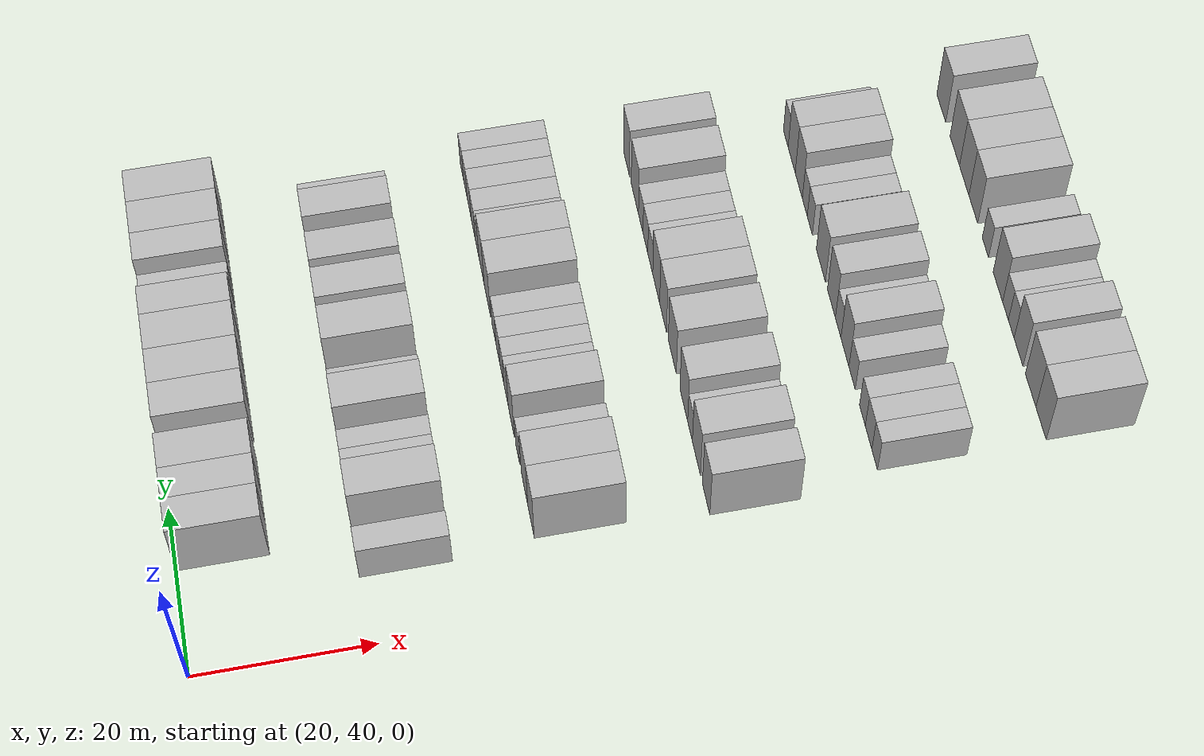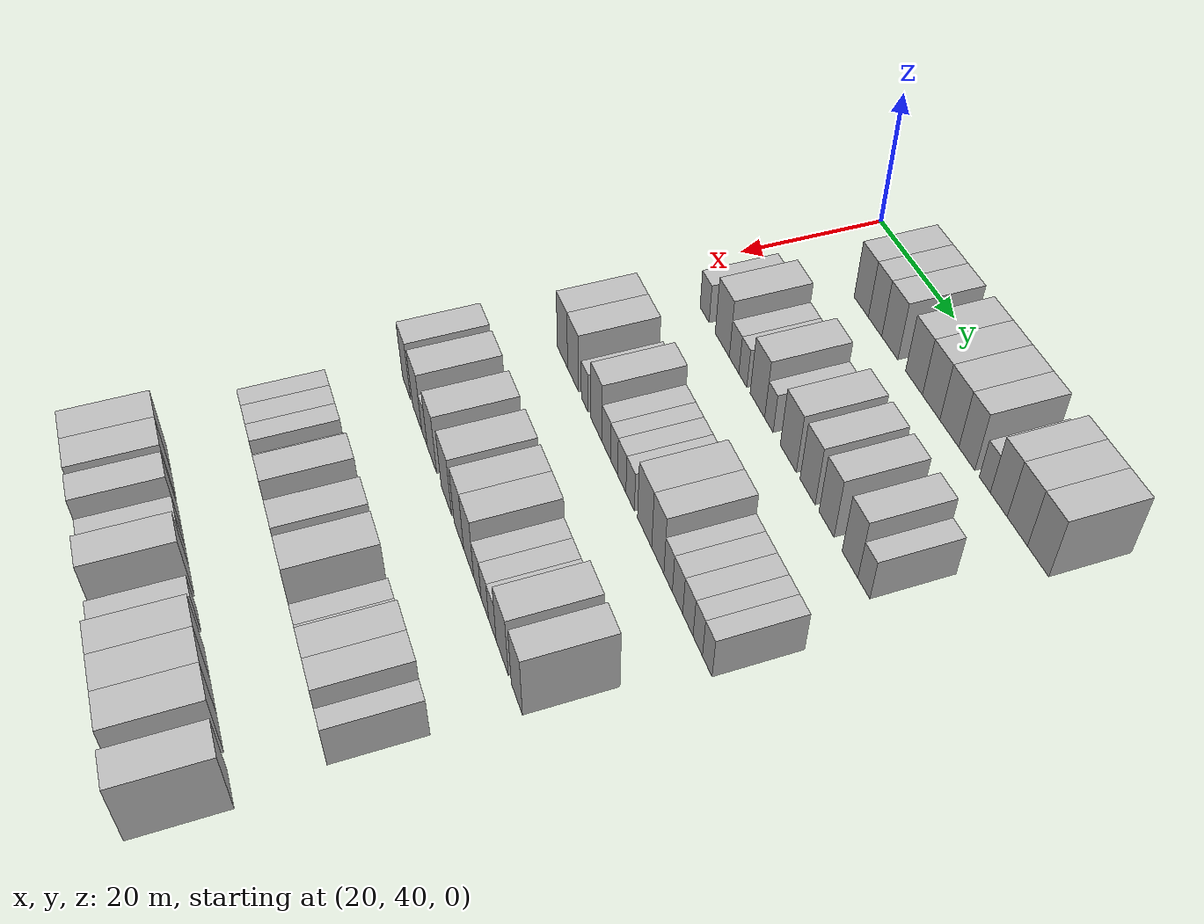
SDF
<sdf version="1.6">
 <world name="default">
  <model name="building_94">
   <static>1</static>
   <pose>25.0000 54.4651 0 0.000000 0.000000 0.000000</pose>
   <link name="link">
    <pose>0 0 4.50 0 0 0</pose>
    <collision name="collision"><geometry><box><size>10.0000 3.9779 9.0000</size></box></geometry></collision>
    <visual name="visual">
     <cast_shadows>0</cast_shadows>
     <geometry><box><size>10.0000 3.9779 9.0000</size></box></geometry>
     <material>
      <script>
       <uri>model://HANNAS_wall/materials/scripts</uri>
       <uri>model://HANNAS_wall/materials/textures</uri>
       <name>vrc/HANNAS_wall</name>
      </script>
     </material>
    </visual>
   </link>
  </model>
  <model name="building_95">
   <static>1</static>
   <pose>25.0000 58.2838 0 0.000000 0.000000 0.000000</pose>
   <link name="link">
    <pose>0 0 4.50 0 0 0</pose>
    <collision name="collision"><geometry><box><size>10.0000 3.6594 9.0000</size></box></geometry></collision>
    <visual name="visual">
     <cast_shadows>0</cast_shadows>
     <geometry><box><size>10.0000 3.6594 9.0000</size></box></geometry>
     <material>
      <script>
       <uri>model://HANNAS_wall/materials/scripts</uri>
       <uri>model://HANNAS_wall/materials/textures</uri>
       <name>vrc/HANNAS_wall</name>
      </script>
     </material>
    </visual>
   </link>
  </model>
  <model name="building_96">
   <static>1</static>
   <pose>25.0000 62.2503 0 0.000000 0.000000 0.000000</pose>
   <link name="link">
    <pose>0 0 4.50 0 0 0</pose>
    <collision name="collision"><geometry><box><size>10.0000 4.2736 9.0000</size></box></geometry></collision>
    <visual name="visual">
     <cast_shadows>0</cast_shadows>
     <geometry><box><size>10.0000 4.2736 9.0000</size></box></geometry>
     <material>
      <script>
       <uri>model://HANNAS_wall/materials/scripts</uri>
       <uri>model://HANNAS_wall/materials/textures</uri>
       <name>vrc/HANNAS_wall</name>
      </script>
     </material>
    </visual>
   </link>
  </model>
  <model name="building_97">
   <static>1</static>
   <pose>25.0000 68.5186 0 0.000000 0.000000 0.000000</pose>
   <link name="link">
    <pose>0 0 4.50 0 0 0</pose>
    <collision name="collision"><geometry><box><size>10.0000 4.2631 9.0000</size></box></geometry></collision>
    <visual name="visual">
     <cast_shadows>0</cast_shadows>
     <geometry><box><size>10.0000 4.2631 9.0000</size></box></geometry>
     <material>
      <script>
       <uri>model://HANNAS_wall/materials/scripts</uri>
       <uri>model://HANNAS_wall/materials/textures</uri>
       <name>vrc/HANNAS_wall</name>
      </script>
     </material>
    </visual>
   </link>
  </model>
  <model name="building_98">
   <static>1</static>
   <pose>25.0000 72.7867 0 0.000000 0.000000 0.000000</pose>
   <link name="link">
    <pose>0 0 4.50 0 0 0</pose>
    <collision name="collision"><geometry><box><size>10.0000 4.2731 9.0000</size></box></geometry></collision>
    <visual name="visual">
     <cast_shadows>0</cast_shadows>
     <geometry><box><size>10.0000 4.2731 9.0000</size></box></geometry>
     <material>
      <script>
       <uri>model://HANNAS_wall/materials/scripts</uri>
       <uri>model://HANNAS_wall/materials/textures</uri>
       <name>vrc/HANNAS_wall</name>
      </script>
     </material>
    </visual>
   </link>
  </model>
  <model name="building_99">
   <static>1</static>
   <pose>25.0000 77.1698 0 0.000000 0.000000 0.000000</pose>
   <link name="link">
    <pose>0 0 4.50 0 0 0</pose>
    <collision name="collision"><geometry><box><size>10.0000 4.4931 9.0000</size></box></geometry></collision>
    <visual name="visual">
     <cast_shadows>0</cast_shadows>
     <geometry><box><size>10.0000 4.4931 9.0000</size></box></geometry>
     <material>
      <script>
       <uri>model://HANNAS_wall/materials/scripts</uri>
       <uri>model://HANNAS_wall/materials/textures</uri>
       <name>vrc/HANNAS_wall</name>
      </script>
     </material>
    </visual>
   </link>
  </model>
  <model name="building_100">
   <static>1</static>
   <pose>25.0000 81.2491 0 0.000000 0.000000 0.000000</pose>
   <link name="link">
    <pose>0 0 4.50 0 0 0</pose>
    <collision name="collision"><geometry><box><size>10.0000 3.6656 9.0000</size></box></geometry></collision>
    <visual name="visual">
     <cast_shadows>0</cast_shadows>
     <geometry><box><size>10.0000 3.6656 9.0000</size></box></geometry>
     <material>
      <script>
       <uri>model://HANNAS_wall/materials/scripts</uri>
       <uri>model://HANNAS_wall/materials/textures</uri>
       <name>vrc/HANNAS_wall</name>
      </script>
     </material>
    </visual>
   </link>
  </model>
  <model name="building_101">
   <static>1</static>
   <pose>25.0000 85.3019 0 0.000000 0.000000 0.000000</pose>
   <link name="link">
    <pose>0 0 3.00 0 0 0</pose>
    <collision name="collision"><geometry><box><size>10.0000 2.4399 6.0000</size></box></geometry></collision>
    <visual name="visual">
     <cast_shadows>0</cast_shadows>
     <geometry><box><size>10.0000 2.4399 6.0000</size></box></geometry>
     <material>
      <script>
       <uri>model://HANNAS_wall/materials/scripts</uri>
       <uri>model://HANNAS_wall/materials/textures</uri>
       <name>vrc/HANNAS_wall</name>
      </script>
     </material>
    </visual>
   </link>
  </model>
  <model name="building_102">
   <static>1</static>
   <pose>25.0000 88.3572 0 0.000000 0.000000 0.000000</pose>
   <link name="link">
    <pose>0 0 4.50 0 0 0</pose>
    <collision name="collision"><geometry><box><size>10.0000 3.6708 9.0000</size></box></geometry></collision>
    <visual name="visual">
     <cast_shadows>0</cast_shadows>
     <geometry><box><size>10.0000 3.6708 9.0000</size></box></geometry>
     <material>
      <script>
       <uri>model://HANNAS_wall/materials/scripts</uri>
       <uri>model://HANNAS_wall/materials/textures</uri>
       <name>vrc/HANNAS_wall</name>
      </script>
     </material>
    </visual>
   </link>
  </model>
  <model name="building_103">
   <static>1</static>
   <pose>25.0000 92.3159 0 0.000000 0.000000 0.000000</pose>
   <link name="link">
    <pose>0 0 4.50 0 0 0</pose>
    <collision name="collision"><geometry><box><size>10.0000 4.2466 9.0000</size></box></geometry></collision>
    <visual name="visual">
     <cast_shadows>0</cast_shadows>
     <geometry><box><size>10.0000 4.2466 9.0000</size></box></geometry>
     <material>
      <script>
       <uri>model://HANNAS_wall/materials/scripts</uri>
       <uri>model://HANNAS_wall/materials/textures</uri>
       <name>vrc/HANNAS_wall</name>
      </script>
     </material>
    </visual>
   </link>
  </model>
  <model name="building_104">
   <static>1</static>
   <pose>25.0000 96.5889 0 0.000000 0.000000 0.000000</pose>
   <link name="link">
    <pose>0 0 4.50 0 0 0</pose>
    <collision name="collision"><geometry><box><size>10.0000 4.2994 9.0000</size></box></geometry></collision>
    <visual name="visual">
     <cast_shadows>0</cast_shadows>
     <geometry><box><size>10.0000 4.2994 9.0000</size></box></geometry>
     <material>
      <script>
       <uri>model://HANNAS_wall/materials/scripts</uri>
       <uri>model://HANNAS_wall/materials/textures</uri>
       <name>vrc/HANNAS_wall</name>
      </script>
     </material>
    </visual>
   </link>
  </model>
  <model name="building_266">
   <static>1</static>
   <pose>44.0000 49.5272 0 0.000000 0.000000 0.000000</pose>
   <link name="link">
    <pose>0 0 3.00 0 0 0</pose>
    <collision name="collision"><geometry><box><size>10.0000 2.9959 6.0000</size></box></geometry></collision>
    <visual name="visual">
     <cast_shadows>0</cast_shadows>
     <geometry><box><size>10.0000 2.9959 6.0000</size></box></geometry>
     <material>
      <script>
       <uri>model://HANNAS_wall/materials/scripts</uri>
       <uri>model://HANNAS_wall/materials/textures</uri>
       <name>vrc/HANNAS_wall</name>
      </script>
     </material>
    </visual>
   </link>
  </model>
  <model name="building_267">
   <static>1</static>
   <pose>44.0000 55.2605 0 0.000000 0.000000 0.000000</pose>
   <link name="link">
    <pose>0 0 4.50 0 0 0</pose>
    <collision name="collision"><geometry><box><size>10.0000 4.4707 9.0000</size></box></geometry></collision>
    <visual name="visual">
     <cast_shadows>0</cast_shadows>
     <geometry><box><size>10.0000 4.4707 9.0000</size></box></geometry>
     <material>
      <script>
       <uri>model://HANNAS_wall/materials/scripts</uri>
       <uri>model://HANNAS_wall/materials/textures</uri>
       <name>vrc/HANNAS_wall</name>
      </script>
     </material>
    </visual>
   </link>
  </model>
  <model name="building_268">
   <static>1</static>
   <pose>44.0000 58.9593 0 0.000000 0.000000 0.000000</pose>
   <link name="link">
    <pose>0 0 3.00 0 0 0</pose>
    <collision name="collision"><geometry><box><size>10.0000 2.9268 6.0000</size></box></geometry></collision>
    <visual name="visual">
     <cast_shadows>0</cast_shadows>
     <geometry><box><size>10.0000 2.9268 6.0000</size></box></geometry>
     <material>
      <script>
       <uri>model://HANNAS_wall/materials/scripts</uri>
       <uri>model://HANNAS_wall/materials/textures</uri>
       <name>vrc/HANNAS_wall</name>
      </script>
     </material>
    </visual>
   </link>
  </model>
  <model name="building_269">
   <static>1</static>
   <pose>44.0000 61.6419 0 0.000000 0.000000 0.000000</pose>
   <link name="link">
    <pose>0 0 3.00 0 0 0</pose>
    <collision name="collision"><geometry><box><size>10.0000 2.4384 6.0000</size></box></geometry></collision>
    <visual name="visual">
     <cast_shadows>0</cast_shadows>
     <geometry><box><size>10.0000 2.4384 6.0000</size></box></geometry>
     <material>
      <script>
       <uri>model://HANNAS_wall/materials/scripts</uri>
       <uri>model://HANNAS_wall/materials/textures</uri>
       <name>vrc/HANNAS_wall</name>
      </script>
     </material>
    </visual>
   </link>
  </model>
  <model name="building_270">
   <static>1</static>
   <pose>44.0000 65.9875 0 0.000000 0.000000 0.000000</pose>
   <link name="link">
    <pose>0 0 4.50 0 0 0</pose>
    <collision name="collision"><geometry><box><size>10.0000 4.2530 9.0000</size></box></geometry></collision>
    <visual name="visual">
     <cast_shadows>0</cast_shadows>
     <geometry><box><size>10.0000 4.2530 9.0000</size></box></geometry>
     <material>
      <script>
       <uri>model://HANNAS_wall/materials/scripts</uri>
       <uri>model://HANNAS_wall/materials/textures</uri>
       <name>vrc/HANNAS_wall</name>
      </script>
     </material>
    </visual>
   </link>
  </model>
  <model name="building_271">
   <static>1</static>
   <pose>44.0000 69.3295 0 0.000000 0.000000 0.000000</pose>
   <link name="link">
    <pose>0 0 3.00 0 0 0</pose>
    <collision name="collision"><geometry><box><size>10.0000 2.4308 6.0000</size></box></geometry></collision>
    <visual name="visual">
     <cast_shadows>0</cast_shadows>
     <geometry><box><size>10.0000 2.4308 6.0000</size></box></geometry>
     <material>
      <script>
       <uri>model://HANNAS_wall/materials/scripts</uri>
       <uri>model://HANNAS_wall/materials/textures</uri>
       <name>vrc/HANNAS_wall</name>
      </script>
     </material>
    </visual>
   </link>
  </model>
  <model name="building_272">
   <static>1</static>
   <pose>44.0000 74.7410 0 0.000000 0.000000 0.000000</pose>
   <link name="link">
    <pose>0 0 4.50 0 0 0</pose>
    <collision name="collision"><geometry><box><size>10.0000 4.3922 9.0000</size></box></geometry></collision>
    <visual name="visual">
     <cast_shadows>0</cast_shadows>
     <geometry><box><size>10.0000 4.3922 9.0000</size></box></geometry>
     <material>
      <script>
       <uri>model://HANNAS_wall/materials/scripts</uri>
       <uri>model://HANNAS_wall/materials/textures</uri>
       <name>vrc/HANNAS_wall</name>
      </script>
     </material>
    </visual>
   </link>
  </model>
  <model name="building_273">
   <static>1</static>
   <pose>44.0000 79.9260 0 0.000000 0.000000 0.000000</pose>
   <link name="link">
    <pose>0 0 4.50 0 0 0</pose>
    <collision name="collision"><geometry><box><size>10.0000 3.9779 9.0000</size></box></geometry></collision>
    <visual name="visual">
     <cast_shadows>0</cast_shadows>
     <geometry><box><size>10.0000 3.9779 9.0000</size></box></geometry>
     <material>
      <script>
       <uri>model://HANNAS_wall/materials/scripts</uri>
       <uri>model://HANNAS_wall/materials/textures</uri>
       <name>vrc/HANNAS_wall</name>
      </script>
     </material>
    </visual>
   </link>
  </model>
  <model name="building_274">
   <static>1</static>
   <pose>44.0000 84.8098 0 0.000000 0.000000 0.000000</pose>
   <link name="link">
    <pose>0 0 4.50 0 0 0</pose>
    <collision name="collision"><geometry><box><size>10.0000 3.7897 9.0000</size></box></geometry></collision>
    <visual name="visual">
     <cast_shadows>0</cast_shadows>
     <geometry><box><size>10.0000 3.7897 9.0000</size></box></geometry>
     <material>
      <script>
       <uri>model://HANNAS_wall/materials/scripts</uri>
       <uri>model://HANNAS_wall/materials/textures</uri>
       <name>vrc/HANNAS_wall</name>
      </script>
     </material>
    </visual>
   </link>
  </model>
  <model name="building_275">
   <static>1</static>
   <pose>44.0000 90.5915 0 0.000000 0.000000 0.000000</pose>
   <link name="link">
    <pose>0 0 4.50 0 0 0</pose>
    <collision name="collision"><geometry><box><size>10.0000 3.7737 9.0000</size></box></geometry></collision>
    <visual name="visual">
     <cast_shadows>0</cast_shadows>
     <geometry><box><size>10.0000 3.7737 9.0000</size></box></geometry>
     <material>
      <script>
       <uri>model://HANNAS_wall/materials/scripts</uri>
       <uri>model://HANNAS_wall/materials/textures</uri>
       <name>vrc/HANNAS_wall</name>
      </script>
     </material>
    </visual>
   </link>
  </model>
  <model name="building_276">
   <static>1</static>
   <pose>44.0000 93.8829 0 0.000000 0.000000 0.000000</pose>
   <link name="link">
    <pose>0 0 3.00 0 0 0</pose>
    <collision name="collision"><geometry><box><size>10.0000 2.8090 6.0000</size></box></geometry></collision>
    <visual name="visual">
     <cast_shadows>0</cast_shadows>
     <geometry><box><size>10.0000 2.8090 6.0000</size></box></geometry>
     <material>
      <script>
       <uri>model://HANNAS_wall/materials/scripts</uri>
       <uri>model://HANNAS_wall/materials/textures</uri>
       <name>vrc/HANNAS_wall</name>
      </script>
     </material>
    </visual>
   </link>
  </model>
  <model name="building_425">
   <static>1</static>
   <pose>63.0000 51.0591 0 0.000000 0.000000 0.000000</pose>
   <link name="link">
    <pose>0 0 4.50 0 0 0</pose>
    <collision name="collision"><geometry><box><size>10.0000 3.9644 9.0000</size></box></geometry></collision>
    <visual name="visual">
     <cast_shadows>0</cast_shadows>
     <geometry><box><size>10.0000 3.9644 9.0000</size></box></geometry>
     <material>
      <script>
       <uri>model://HANNAS_wall/materials/scripts</uri>
       <uri>model://HANNAS_wall/materials/textures</uri>
       <name>vrc/HANNAS_wall</name>
      </script>
     </material>
    </visual>
   </link>
  </model>
  <model name="building_426">
   <static>1</static>
   <pose>63.0000 55.1202 0 0.000000 0.000000 0.000000</pose>
   <link name="link">
    <pose>0 0 4.50 0 0 0</pose>
    <collision name="collision"><geometry><box><size>10.0000 4.1578 9.0000</size></box></geometry></collision>
    <visual name="visual">
     <cast_shadows>0</cast_shadows>
     <geometry><box><size>10.0000 4.1578 9.0000</size></box></geometry>
     <material>
      <script>
       <uri>model://HANNAS_wall/materials/scripts</uri>
       <uri>model://HANNAS_wall/materials/textures</uri>
       <name>vrc/HANNAS_wall</name>
      </script>
     </material>
    </visual>
   </link>
  </model>
  <model name="building_427">
   <static>1</static>
   <pose>63.0000 59.4312 0 0.000000 0.000000 0.000000</pose>
   <link name="link">
    <pose>0 0 3.00 0 0 0</pose>
    <collision name="collision"><geometry><box><size>10.0000 2.4641 6.0000</size></box></geometry></collision>
    <visual name="visual">
     <cast_shadows>0</cast_shadows>
     <geometry><box><size>10.0000 2.4641 6.0000</size></box></geometry>
     <material>
      <script>
       <uri>model://HANNAS_wall/materials/scripts</uri>
       <uri>model://HANNAS_wall/materials/textures</uri>
       <name>vrc/HANNAS_wall</name>
      </script>
     </material>
    </visual>
   </link>
  </model>
  <model name="building_428">
   <static>1</static>
   <pose>63.0000 63.6149 0 0.000000 0.000000 0.000000</pose>
   <link name="link">
    <pose>0 0 4.50 0 0 0</pose>
    <collision name="collision"><geometry><box><size>10.0000 3.9033 9.0000</size></box></geometry></collision>
    <visual name="visual">
     <cast_shadows>0</cast_shadows>
     <geometry><box><size>10.0000 3.9033 9.0000</size></box></geometry>
     <material>
      <script>
       <uri>model://HANNAS_wall/materials/scripts</uri>
       <uri>model://HANNAS_wall/materials/textures</uri>
       <name>vrc/HANNAS_wall</name>
      </script>
     </material>
    </visual>
   </link>
  </model>
  <model name="building_429">
   <static>1</static>
   <pose>63.0000 67.0221 0 0.000000 0.000000 0.000000</pose>
   <link name="link">
    <pose>0 0 3.00 0 0 0</pose>
    <collision name="collision"><geometry><box><size>10.0000 2.9111 6.0000</size></box></geometry></collision>
    <visual name="visual">
     <cast_shadows>0</cast_shadows>
     <geometry><box><size>10.0000 2.9111 6.0000</size></box></geometry>
     <material>
      <script>
       <uri>model://HANNAS_wall/materials/scripts</uri>
       <uri>model://HANNAS_wall/materials/textures</uri>
       <name>vrc/HANNAS_wall</name>
      </script>
     </material>
    </visual>
   </link>
  </model>
  <model name="building_430">
   <static>1</static>
   <pose>63.0000 69.6910 0 0.000000 0.000000 0.000000</pose>
   <link name="link">
    <pose>0 0 3.00 0 0 0</pose>
    <collision name="collision"><geometry><box><size>10.0000 2.4268 6.0000</size></box></geometry></collision>
    <visual name="visual">
     <cast_shadows>0</cast_shadows>
     <geometry><box><size>10.0000 2.4268 6.0000</size></box></geometry>
     <material>
      <script>
       <uri>model://HANNAS_wall/materials/scripts</uri>
       <uri>model://HANNAS_wall/materials/textures</uri>
       <name>vrc/HANNAS_wall</name>
      </script>
     </material>
    </visual>
   </link>
  </model>
  <model name="building_431">
   <static>1</static>
   <pose>63.0000 72.2719 0 0.000000 0.000000 0.000000</pose>
   <link name="link">
    <pose>0 0 3.00 0 0 0</pose>
    <collision name="collision"><geometry><box><size>10.0000 2.7349 6.0000</size></box></geometry></collision>
    <visual name="visual">
     <cast_shadows>0</cast_shadows>
     <geometry><box><size>10.0000 2.7349 6.0000</size></box></geometry>
     <material>
      <script>
       <uri>model://HANNAS_wall/materials/scripts</uri>
       <uri>model://HANNAS_wall/materials/textures</uri>
       <name>vrc/HANNAS_wall</name>
      </script>
     </material>
    </visual>
   </link>
  </model>
  <model name="building_432">
   <static>1</static>
   <pose>63.0000 75.0041 0 0.000000 0.000000 0.000000</pose>
   <link name="link">
    <pose>0 0 3.00 0 0 0</pose>
    <collision name="collision"><geometry><box><size>10.0000 2.7296 6.0000</size></box></geometry></collision>
    <visual name="visual">
     <cast_shadows>0</cast_shadows>
     <geometry><box><size>10.0000 2.7296 6.0000</size></box></geometry>
     <material>
      <script>
       <uri>model://HANNAS_wall/materials/scripts</uri>
       <uri>model://HANNAS_wall/materials/textures</uri>
       <name>vrc/HANNAS_wall</name>
      </script>
     </material>
    </visual>
   </link>
  </model>
  <model name="building_433">
   <static>1</static>
   <pose>63.0000 79.5641 0 0.000000 0.000000 0.000000</pose>
   <link name="link">
    <pose>0 0 4.50 0 0 0</pose>
    <collision name="collision"><geometry><box><size>10.0000 4.3903 9.0000</size></box></geometry></collision>
    <visual name="visual">
     <cast_shadows>0</cast_shadows>
     <geometry><box><size>10.0000 4.3903 9.0000</size></box></geometry>
     <material>
      <script>
       <uri>model://HANNAS_wall/materials/scripts</uri>
       <uri>model://HANNAS_wall/materials/textures</uri>
       <name>vrc/HANNAS_wall</name>
      </script>
     </material>
    </visual>
   </link>
  </model>
  <model name="building_434">
   <static>1</static>
   <pose>63.0000 83.5971 0 0.000000 0.000000 0.000000</pose>
   <link name="link">
    <pose>0 0 4.50 0 0 0</pose>
    <collision name="collision"><geometry><box><size>10.0000 3.6756 9.0000</size></box></geometry></collision>
    <visual name="visual">
     <cast_shadows>0</cast_shadows>
     <geometry><box><size>10.0000 3.6756 9.0000</size></box></geometry>
     <material>
      <script>
       <uri>model://HANNAS_wall/materials/scripts</uri>
       <uri>model://HANNAS_wall/materials/textures</uri>
       <name>vrc/HANNAS_wall</name>
      </script>
     </material>
    </visual>
   </link>
  </model>
  <model name="building_435">
   <static>1</static>
   <pose>63.0000 86.6730 0 0.000000 0.000000 0.000000</pose>
   <link name="link">
    <pose>0 0 3.00 0 0 0</pose>
    <collision name="collision"><geometry><box><size>10.0000 2.4763 6.0000</size></box></geometry></collision>
    <visual name="visual">
     <cast_shadows>0</cast_shadows>
     <geometry><box><size>10.0000 2.4763 6.0000</size></box></geometry>
     <material>
      <script>
       <uri>model://HANNAS_wall/materials/scripts</uri>
       <uri>model://HANNAS_wall/materials/textures</uri>
       <name>vrc/HANNAS_wall</name>
      </script>
     </material>
    </visual>
   </link>
  </model>
  <model name="building_436">
   <static>1</static>
   <pose>63.0000 89.3822 0 0.000000 0.000000 0.000000</pose>
   <link name="link">
    <pose>0 0 3.00 0 0 0</pose>
    <collision name="collision"><geometry><box><size>10.0000 2.9420 6.0000</size></box></geometry></collision>
    <visual name="visual">
     <cast_shadows>0</cast_shadows>
     <geometry><box><size>10.0000 2.9420 6.0000</size></box></geometry>
     <material>
      <script>
       <uri>model://HANNAS_wall/materials/scripts</uri>
       <uri>model://HANNAS_wall/materials/textures</uri>
       <name>vrc/HANNAS_wall</name>
      </script>
     </material>
    </visual>
   </link>
  </model>
  <model name="building_437">
   <static>1</static>
   <pose>63.0000 92.3025 0 0.000000 0.000000 0.000000</pose>
   <link name="link">
    <pose>0 0 3.00 0 0 0</pose>
    <collision name="collision"><geometry><box><size>10.0000 2.8986 6.0000</size></box></geometry></collision>
    <visual name="visual">
     <cast_shadows>0</cast_shadows>
     <geometry><box><size>10.0000 2.8986 6.0000</size></box></geometry>
     <material>
      <script>
       <uri>model://HANNAS_wall/materials/scripts</uri>
       <uri>model://HANNAS_wall/materials/textures</uri>
       <name>vrc/HANNAS_wall</name>
      </script>
     </material>
    </visual>
   </link>
  </model>
  <model name="building_438">
   <static>1</static>
   <pose>63.0000 95.0198 0 0.000000 0.000000 0.000000</pose>
   <link name="link">
    <pose>0 0 3.00 0 0 0</pose>
    <collision name="collision"><geometry><box><size>10.0000 2.5360 6.0000</size></box></geometry></collision>
    <visual name="visual">
     <cast_shadows>0</cast_shadows>
     <geometry><box><size>10.0000 2.5360 6.0000</size></box></geometry>
     <material>
      <script>
       <uri>model://HANNAS_wall/materials/scripts</uri>
       <uri>model://HANNAS_wall/materials/textures</uri>
       <name>vrc/HANNAS_wall</name>
      </script>
     </material>
    </visual>
   </link>
  </model>
  <model name="building_439">
   <static>1</static>
   <pose>63.0000 97.5725 0 0.000000 0.000000 0.000000</pose>
   <link name="link">
    <pose>0 0 3.00 0 0 0</pose>
    <collision name="collision"><geometry><box><size>10.0000 2.5694 6.0000</size></box></geometry></collision>
    <visual name="visual">
     <cast_shadows>0</cast_shadows>
     <geometry><box><size>10.0000 2.5694 6.0000</size></box></geometry>
     <material>
      <script>
       <uri>model://HANNAS_wall/materials/scripts</uri>
       <uri>model://HANNAS_wall/materials/textures</uri>
       <name>vrc/HANNAS_wall</name>
      </script>
     </material>
    </visual>
   </link>
  </model>
  <model name="building_607">
   <static>1</static>
   <pose>82.0000 50.2056 0 0.000000 0.000000 0.000000</pose>
   <link name="link">
    <pose>0 0 4.50 0 0 0</pose>
    <collision name="collision"><geometry><box><size>10.0000 3.8869 9.0000</size></box></geometry></collision>
    <visual name="visual">
     <cast_shadows>0</cast_shadows>
     <geometry><box><size>10.0000 3.8869 9.0000</size></box></geometry>
     <material>
      <script>
       <uri>model://HANNAS_wall/materials/scripts</uri>
       <uri>model://HANNAS_wall/materials/textures</uri>
       <name>vrc/HANNAS_wall</name>
      </script>
     </material>
    </visual>
   </link>
  </model>
  <model name="building_608">
   <static>1</static>
   <pose>82.0000 55.3043 0 0.000000 0.000000 0.000000</pose>
   <link name="link">
    <pose>0 0 4.50 0 0 0</pose>
    <collision name="collision"><geometry><box><size>10.0000 4.3107 9.0000</size></box></geometry></collision>
    <visual name="visual">
     <cast_shadows>0</cast_shadows>
     <geometry><box><size>10.0000 4.3107 9.0000</size></box></geometry>
     <material>
      <script>
       <uri>model://HANNAS_wall/materials/scripts</uri>
       <uri>model://HANNAS_wall/materials/textures</uri>
       <name>vrc/HANNAS_wall</name>
      </script>
     </material>
    </visual>
   </link>
  </model>
  <model name="building_609">
   <static>1</static>
   <pose>82.0000 58.7234 0 0.000000 0.000000 0.000000</pose>
   <link name="link">
    <pose>0 0 3.00 0 0 0</pose>
    <collision name="collision"><geometry><box><size>10.0000 2.5273 6.0000</size></box></geometry></collision>
    <visual name="visual">
     <cast_shadows>0</cast_shadows>
     <geometry><box><size>10.0000 2.5273 6.0000</size></box></geometry>
     <material>
      <script>
       <uri>model://HANNAS_wall/materials/scripts</uri>
       <uri>model://HANNAS_wall/materials/textures</uri>
       <name>vrc/HANNAS_wall</name>
      </script>
     </material>
    </visual>
   </link>
  </model>
  <model name="building_610">
   <static>1</static>
   <pose>82.0000 62.0924 0 0.000000 0.000000 0.000000</pose>
   <link name="link">
    <pose>0 0 4.50 0 0 0</pose>
    <collision name="collision"><geometry><box><size>10.0000 4.2108 9.0000</size></box></geometry></collision>
    <visual name="visual">
     <cast_shadows>0</cast_shadows>
     <geometry><box><size>10.0000 4.2108 9.0000</size></box></geometry>
     <material>
      <script>
       <uri>model://HANNAS_wall/materials/scripts</uri>
       <uri>model://HANNAS_wall/materials/textures</uri>
       <name>vrc/HANNAS_wall</name>
      </script>
     </material>
    </visual>
   </link>
  </model>
  <model name="building_611">
   <static>1</static>
   <pose>82.0000 68.4309 0 0.000000 0.000000 0.000000</pose>
   <link name="link">
    <pose>0 0 4.50 0 0 0</pose>
    <collision name="collision"><geometry><box><size>10.0000 4.4662 9.0000</size></box></geometry></collision>
    <visual name="visual">
     <cast_shadows>0</cast_shadows>
     <geometry><box><size>10.0000 4.4662 9.0000</size></box></geometry>
     <material>
      <script>
       <uri>model://HANNAS_wall/materials/scripts</uri>
       <uri>model://HANNAS_wall/materials/textures</uri>
       <name>vrc/HANNAS_wall</name>
      </script>
     </material>
    </visual>
   </link>
  </model>
  <model name="building_612">
   <static>1</static>
   <pose>82.0000 73.6121 0 0.000000 0.000000 0.000000</pose>
   <link name="link">
    <pose>0 0 4.50 0 0 0</pose>
    <collision name="collision"><geometry><box><size>10.0000 3.8962 9.0000</size></box></geometry></collision>
    <visual name="visual">
     <cast_shadows>0</cast_shadows>
     <geometry><box><size>10.0000 3.8962 9.0000</size></box></geometry>
     <material>
      <script>
       <uri>model://HANNAS_wall/materials/scripts</uri>
       <uri>model://HANNAS_wall/materials/textures</uri>
       <name>vrc/HANNAS_wall</name>
      </script>
     </material>
    </visual>
   </link>
  </model>
  <model name="building_613">
   <static>1</static>
   <pose>82.0000 77.5427 0 0.000000 0.000000 0.000000</pose>
   <link name="link">
    <pose>0 0 4.50 0 0 0</pose>
    <collision name="collision"><geometry><box><size>10.0000 3.9651 9.0000</size></box></geometry></collision>
    <visual name="visual">
     <cast_shadows>0</cast_shadows>
     <geometry><box><size>10.0000 3.9651 9.0000</size></box></geometry>
     <material>
      <script>
       <uri>model://HANNAS_wall/materials/scripts</uri>
       <uri>model://HANNAS_wall/materials/textures</uri>
       <name>vrc/HANNAS_wall</name>
      </script>
     </material>
    </visual>
   </link>
  </model>
  <model name="building_614">
   <static>1</static>
   <pose>82.0000 80.9500 0 0.000000 0.000000 0.000000</pose>
   <link name="link">
    <pose>0 0 3.00 0 0 0</pose>
    <collision name="collision"><geometry><box><size>10.0000 2.8494 6.0000</size></box></geometry></collision>
    <visual name="visual">
     <cast_shadows>0</cast_shadows>
     <geometry><box><size>10.0000 2.8494 6.0000</size></box></geometry>
     <material>
      <script>
       <uri>model://HANNAS_wall/materials/scripts</uri>
       <uri>model://HANNAS_wall/materials/textures</uri>
       <name>vrc/HANNAS_wall</name>
      </script>
     </material>
    </visual>
   </link>
  </model>
  <model name="building_615">
   <static>1</static>
   <pose>82.0000 83.7794 0 0.000000 0.000000 0.000000</pose>
   <link name="link">
    <pose>0 0 3.00 0 0 0</pose>
    <collision name="collision"><geometry><box><size>10.0000 2.8095 6.0000</size></box></geometry></collision>
    <visual name="visual">
     <cast_shadows>0</cast_shadows>
     <geometry><box><size>10.0000 2.8095 6.0000</size></box></geometry>
     <material>
      <script>
       <uri>model://HANNAS_wall/materials/scripts</uri>
       <uri>model://HANNAS_wall/materials/textures</uri>
       <name>vrc/HANNAS_wall</name>
      </script>
     </material>
    </visual>
   </link>
  </model>
  <model name="building_616">
   <static>1</static>
   <pose>82.0000 86.5481 0 0.000000 0.000000 0.000000</pose>
   <link name="link">
    <pose>0 0 3.00 0 0 0</pose>
    <collision name="collision"><geometry><box><size>10.0000 2.7280 6.0000</size></box></geometry></collision>
    <visual name="visual">
     <cast_shadows>0</cast_shadows>
     <geometry><box><size>10.0000 2.7280 6.0000</size></box></geometry>
     <material>
      <script>
       <uri>model://HANNAS_wall/materials/scripts</uri>
       <uri>model://HANNAS_wall/materials/textures</uri>
       <name>vrc/HANNAS_wall</name>
      </script>
     </material>
    </visual>
   </link>
  </model>
  <model name="building_617">
   <static>1</static>
   <pose>82.0000 90.0690 0 0.000000 0.000000 0.000000</pose>
   <link name="link">
    <pose>0 0 4.50 0 0 0</pose>
    <collision name="collision"><geometry><box><size>10.0000 4.3139 9.0000</size></box></geometry></collision>
    <visual name="visual">
     <cast_shadows>0</cast_shadows>
     <geometry><box><size>10.0000 4.3139 9.0000</size></box></geometry>
     <material>
      <script>
       <uri>model://HANNAS_wall/materials/scripts</uri>
       <uri>model://HANNAS_wall/materials/textures</uri>
       <name>vrc/HANNAS_wall</name>
      </script>
     </material>
    </visual>
   </link>
  </model>
  <model name="building_618">
   <static>1</static>
   <pose>82.0000 95.1213 0 0.000000 0.000000 0.000000</pose>
   <link name="link">
    <pose>0 0 4.50 0 0 0</pose>
    <collision name="collision"><geometry><box><size>10.0000 3.7907 9.0000</size></box></geometry></collision>
    <visual name="visual">
     <cast_shadows>0</cast_shadows>
     <geometry><box><size>10.0000 3.7907 9.0000</size></box></geometry>
     <material>
      <script>
       <uri>model://HANNAS_wall/materials/scripts</uri>
       <uri>model://HANNAS_wall/materials/textures</uri>
       <name>vrc/HANNAS_wall</name>
      </script>
     </material>
    </visual>
   </link>
  </model>
  <model name="building_778">
   <static>1</static>
   <pose>101.0000 51.4612 0 0.000000 0.000000 0.000000</pose>
   <link name="link">
    <pose>0 0 3.00 0 0 0</pose>
    <collision name="collision"><geometry><box><size>10.0000 2.6195 6.0000</size></box></geometry></collision>
    <visual name="visual">
     <cast_shadows>0</cast_shadows>
     <geometry><box><size>10.0000 2.6195 6.0000</size></box></geometry>
     <material>
      <script>
       <uri>model://HANNAS_wall/materials/scripts</uri>
       <uri>model://HANNAS_wall/materials/textures</uri>
       <name>vrc/HANNAS_wall</name>
      </script>
     </material>
    </visual>
   </link>
  </model>
  <model name="building_779">
   <static>1</static>
   <pose>101.0000 54.2704 0 0.000000 0.000000 0.000000</pose>
   <link name="link">
    <pose>0 0 3.00 0 0 0</pose>
    <collision name="collision"><geometry><box><size>10.0000 2.9988 6.0000</size></box></geometry></collision>
    <visual name="visual">
     <cast_shadows>0</cast_shadows>
     <geometry><box><size>10.0000 2.9988 6.0000</size></box></geometry>
     <material>
      <script>
       <uri>model://HANNAS_wall/materials/scripts</uri>
       <uri>model://HANNAS_wall/materials/textures</uri>
       <name>vrc/HANNAS_wall</name>
      </script>
     </material>
    </visual>
   </link>
  </model>
  <model name="building_780">
   <static>1</static>
   <pose>101.0000 57.1079 0 0.000000 0.000000 0.000000</pose>
   <link name="link">
    <pose>0 0 3.00 0 0 0</pose>
    <collision name="collision"><geometry><box><size>10.0000 2.6761 6.0000</size></box></geometry></collision>
    <visual name="visual">
     <cast_shadows>0</cast_shadows>
     <geometry><box><size>10.0000 2.6761 6.0000</size></box></geometry>
     <material>
      <script>
       <uri>model://HANNAS_wall/materials/scripts</uri>
       <uri>model://HANNAS_wall/materials/textures</uri>
       <name>vrc/HANNAS_wall</name>
      </script>
     </material>
    </visual>
   </link>
  </model>
  <model name="building_781">
   <static>1</static>
   <pose>101.0000 61.9440 0 0.000000 0.000000 0.000000</pose>
   <link name="link">
    <pose>0 0 3.00 0 0 0</pose>
    <collision name="collision"><geometry><box><size>10.0000 2.9962 6.0000</size></box></geometry></collision>
    <visual name="visual">
     <cast_shadows>0</cast_shadows>
     <geometry><box><size>10.0000 2.9962 6.0000</size></box></geometry>
     <material>
      <script>
       <uri>model://HANNAS_wall/materials/scripts</uri>
       <uri>model://HANNAS_wall/materials/textures</uri>
       <name>vrc/HANNAS_wall</name>
      </script>
     </material>
    </visual>
   </link>
  </model>
  <model name="building_782">
   <static>1</static>
   <pose>101.0000 65.3505 0 0.000000 0.000000 0.000000</pose>
   <link name="link">
    <pose>0 0 4.50 0 0 0</pose>
    <collision name="collision"><geometry><box><size>10.0000 3.8168 9.0000</size></box></geometry></collision>
    <visual name="visual">
     <cast_shadows>0</cast_shadows>
     <geometry><box><size>10.0000 3.8168 9.0000</size></box></geometry>
     <material>
      <script>
       <uri>model://HANNAS_wall/materials/scripts</uri>
       <uri>model://HANNAS_wall/materials/textures</uri>
       <name>vrc/HANNAS_wall</name>
      </script>
     </material>
    </visual>
   </link>
  </model>
  <model name="building_783">
   <static>1</static>
   <pose>101.0000 68.6039 0 0.000000 0.000000 0.000000</pose>
   <link name="link">
    <pose>0 0 3.00 0 0 0</pose>
    <collision name="collision"><geometry><box><size>10.0000 2.6900 6.0000</size></box></geometry></collision>
    <visual name="visual">
     <cast_shadows>0</cast_shadows>
     <geometry><box><size>10.0000 2.6900 6.0000</size></box></geometry>
     <material>
      <script>
       <uri>model://HANNAS_wall/materials/scripts</uri>
       <uri>model://HANNAS_wall/materials/textures</uri>
       <name>vrc/HANNAS_wall</name>
      </script>
     </material>
    </visual>
   </link>
  </model>
  <model name="building_784">
   <static>1</static>
   <pose>101.0000 71.8849 0 0.000000 0.000000 0.000000</pose>
   <link name="link">
    <pose>0 0 4.50 0 0 0</pose>
    <collision name="collision"><geometry><box><size>10.0000 3.8719 9.0000</size></box></geometry></collision>
    <visual name="visual">
     <cast_shadows>0</cast_shadows>
     <geometry><box><size>10.0000 3.8719 9.0000</size></box></geometry>
     <material>
      <script>
       <uri>model://HANNAS_wall/materials/scripts</uri>
       <uri>model://HANNAS_wall/materials/textures</uri>
       <name>vrc/HANNAS_wall</name>
      </script>
     </material>
    </visual>
   </link>
  </model>
  <model name="building_785">
   <static>1</static>
   <pose>101.0000 77.0695 0 0.000000 0.000000 0.000000</pose>
   <link name="link">
    <pose>0 0 4.50 0 0 0</pose>
    <collision name="collision"><geometry><box><size>10.0000 4.4974 9.0000</size></box></geometry></collision>
    <visual name="visual">
     <cast_shadows>0</cast_shadows>
     <geometry><box><size>10.0000 4.4974 9.0000</size></box></geometry>
     <material>
      <script>
       <uri>model://HANNAS_wall/materials/scripts</uri>
       <uri>model://HANNAS_wall/materials/textures</uri>
       <name>vrc/HANNAS_wall</name>
      </script>
     </material>
    </visual>
   </link>
  </model>
  <model name="building_786">
   <static>1</static>
   <pose>101.0000 82.6292 0 0.000000 0.000000 0.000000</pose>
   <link name="link">
    <pose>0 0 3.00 0 0 0</pose>
    <collision name="collision"><geometry><box><size>10.0000 2.6221 6.0000</size></box></geometry></collision>
    <visual name="visual">
     <cast_shadows>0</cast_shadows>
     <geometry><box><size>10.0000 2.6221 6.0000</size></box></geometry>
     <material>
      <script>
       <uri>model://HANNAS_wall/materials/scripts</uri>
       <uri>model://HANNAS_wall/materials/textures</uri>
       <name>vrc/HANNAS_wall</name>
      </script>
     </material>
    </visual>
   </link>
  </model>
  <model name="building_787">
   <static>1</static>
   <pose>101.0000 85.2027 0 0.000000 0.000000 0.000000</pose>
   <link name="link">
    <pose>0 0 3.00 0 0 0</pose>
    <collision name="collision"><geometry><box><size>10.0000 2.5249 6.0000</size></box></geometry></collision>
    <visual name="visual">
     <cast_shadows>0</cast_shadows>
     <geometry><box><size>10.0000 2.5249 6.0000</size></box></geometry>
     <material>
      <script>
       <uri>model://HANNAS_wall/materials/scripts</uri>
       <uri>model://HANNAS_wall/materials/textures</uri>
       <name>vrc/HANNAS_wall</name>
      </script>
     </material>
    </visual>
   </link>
  </model>
  <model name="building_788">
   <static>1</static>
   <pose>101.0000 88.2997 0 0.000000 0.000000 0.000000</pose>
   <link name="link">
    <pose>0 0 4.50 0 0 0</pose>
    <collision name="collision"><geometry><box><size>10.0000 3.6691 9.0000</size></box></geometry></collision>
    <visual name="visual">
     <cast_shadows>0</cast_shadows>
     <geometry><box><size>10.0000 3.6691 9.0000</size></box></geometry>
     <material>
      <script>
       <uri>model://HANNAS_wall/materials/scripts</uri>
       <uri>model://HANNAS_wall/materials/textures</uri>
       <name>vrc/HANNAS_wall</name>
      </script>
     </material>
    </visual>
   </link>
  </model>
  <model name="building_789">
   <static>1</static>
   <pose>101.0000 91.9799 0 0.000000 0.000000 0.000000</pose>
   <link name="link">
    <pose>0 0 4.50 0 0 0</pose>
    <collision name="collision"><geometry><box><size>10.0000 3.6912 9.0000</size></box></geometry></collision>
    <visual name="visual">
     <cast_shadows>0</cast_shadows>
     <geometry><box><size>10.0000 3.6912 9.0000</size></box></geometry>
     <material>
      <script>
       <uri>model://HANNAS_wall/materials/scripts</uri>
       <uri>model://HANNAS_wall/materials/textures</uri>
       <name>vrc/HANNAS_wall</name>
      </script>
     </material>
    </visual>
   </link>
  </model>
  <model name="building_790">
   <static>1</static>
   <pose>101.0000 95.0569 0 0.000000 0.000000 0.000000</pose>
   <link name="link">
    <pose>0 0 3.00 0 0 0</pose>
    <collision name="collision"><geometry><box><size>10.0000 2.4629 6.0000</size></box></geometry></collision>
    <visual name="visual">
     <cast_shadows>0</cast_shadows>
     <geometry><box><size>10.0000 2.4629 6.0000</size></box></geometry>
     <material>
      <script>
       <uri>model://HANNAS_wall/materials/scripts</uri>
       <uri>model://HANNAS_wall/materials/textures</uri>
       <name>vrc/HANNAS_wall</name>
      </script>
     </material>
    </visual>
   </link>
  </model>
  <model name="building_942">
   <static>1</static>
   <pose>120.0000 52.4008 0 0.000000 0.000000 0.000000</pose>
   <link name="link">
    <pose>0 0 4.50 0 0 0</pose>
    <collision name="collision"><geometry><box><size>10.0000 4.1961 9.0000</size></box></geometry></collision>
    <visual name="visual">
     <cast_shadows>0</cast_shadows>
     <geometry><box><size>10.0000 4.1961 9.0000</size></box></geometry>
     <material>
      <script>
       <uri>model://HANNAS_wall/materials/scripts</uri>
       <uri>model://HANNAS_wall/materials/textures</uri>
       <name>vrc/HANNAS_wall</name>
      </script>
     </material>
    </visual>
   </link>
  </model>
  <model name="building_943">
   <static>1</static>
   <pose>120.0000 56.6574 0 0.000000 0.000000 0.000000</pose>
   <link name="link">
    <pose>0 0 4.50 0 0 0</pose>
    <collision name="collision"><geometry><box><size>10.0000 4.3172 9.0000</size></box></geometry></collision>
    <visual name="visual">
     <cast_shadows>0</cast_shadows>
     <geometry><box><size>10.0000 4.3172 9.0000</size></box></geometry>
     <material>
      <script>
       <uri>model://HANNAS_wall/materials/scripts</uri>
       <uri>model://HANNAS_wall/materials/textures</uri>
       <name>vrc/HANNAS_wall</name>
      </script>
     </material>
    </visual>
   </link>
  </model>
  <model name="building_944">
   <static>1</static>
   <pose>120.0000 61.6788 0 0.000000 0.000000 0.000000</pose>
   <link name="link">
    <pose>0 0 4.50 0 0 0</pose>
    <collision name="collision"><geometry><box><size>10.0000 3.7256 9.0000</size></box></geometry></collision>
    <visual name="visual">
     <cast_shadows>0</cast_shadows>
     <geometry><box><size>10.0000 3.7256 9.0000</size></box></geometry>
     <material>
      <script>
       <uri>model://HANNAS_wall/materials/scripts</uri>
       <uri>model://HANNAS_wall/materials/textures</uri>
       <name>vrc/HANNAS_wall</name>
      </script>
     </material>
    </visual>
   </link>
  </model>
  <model name="building_945">
   <static>1</static>
   <pose>120.0000 64.7579 0 0.000000 0.000000 0.000000</pose>
   <link name="link">
    <pose>0 0 3.00 0 0 0</pose>
    <collision name="collision"><geometry><box><size>10.0000 2.4326 6.0000</size></box></geometry></collision>
    <visual name="visual">
     <cast_shadows>0</cast_shadows>
     <geometry><box><size>10.0000 2.4326 6.0000</size></box></geometry>
     <material>
      <script>
       <uri>model://HANNAS_wall/materials/scripts</uri>
       <uri>model://HANNAS_wall/materials/textures</uri>
       <name>vrc/HANNAS_wall</name>
      </script>
     </material>
    </visual>
   </link>
  </model>
  <model name="building_946">
   <static>1</static>
   <pose>120.0000 67.1981 0 0.000000 0.000000 0.000000</pose>
   <link name="link">
    <pose>0 0 3.00 0 0 0</pose>
    <collision name="collision"><geometry><box><size>10.0000 2.4477 6.0000</size></box></geometry></collision>
    <visual name="visual">
     <cast_shadows>0</cast_shadows>
     <geometry><box><size>10.0000 2.4477 6.0000</size></box></geometry>
     <material>
      <script>
       <uri>model://HANNAS_wall/materials/scripts</uri>
       <uri>model://HANNAS_wall/materials/textures</uri>
       <name>vrc/HANNAS_wall</name>
      </script>
     </material>
    </visual>
   </link>
  </model>
  <model name="building_947">
   <static>1</static>
   <pose>120.0000 70.4643 0 0.000000 0.000000 0.000000</pose>
   <link name="link">
    <pose>0 0 4.50 0 0 0</pose>
    <collision name="collision"><geometry><box><size>10.0000 4.0846 9.0000</size></box></geometry></collision>
    <visual name="visual">
     <cast_shadows>0</cast_shadows>
     <geometry><box><size>10.0000 4.0846 9.0000</size></box></geometry>
     <material>
      <script>
       <uri>model://HANNAS_wall/materials/scripts</uri>
       <uri>model://HANNAS_wall/materials/textures</uri>
       <name>vrc/HANNAS_wall</name>
      </script>
     </material>
    </visual>
   </link>
  </model>
  <model name="building_948">
   <static>1</static>
   <pose>120.0000 75.8828 0 0.000000 0.000000 0.000000</pose>
   <link name="link">
    <pose>0 0 3.00 0 0 0</pose>
    <collision name="collision"><geometry><box><size>10.0000 2.7525 6.0000</size></box></geometry></collision>
    <visual name="visual">
     <cast_shadows>0</cast_shadows>
     <geometry><box><size>10.0000 2.7525 6.0000</size></box></geometry>
     <material>
      <script>
       <uri>model://HANNAS_wall/materials/scripts</uri>
       <uri>model://HANNAS_wall/materials/textures</uri>
       <name>vrc/HANNAS_wall</name>
      </script>
     </material>
    </visual>
   </link>
  </model>
  <model name="building_949">
   <static>1</static>
   <pose>120.0000 81.2473 0 0.000000 0.000000 0.000000</pose>
   <link name="link">
    <pose>0 0 4.50 0 0 0</pose>
    <collision name="collision"><geometry><box><size>10.0000 3.9764 9.0000</size></box></geometry></collision>
    <visual name="visual">
     <cast_shadows>0</cast_shadows>
     <geometry><box><size>10.0000 3.9764 9.0000</size></box></geometry>
     <material>
      <script>
       <uri>model://HANNAS_wall/materials/scripts</uri>
       <uri>model://HANNAS_wall/materials/textures</uri>
       <name>vrc/HANNAS_wall</name>
      </script>
     </material>
    </visual>
   </link>
  </model>
  <model name="building_950">
   <static>1</static>
   <pose>120.0000 85.3541 0 0.000000 0.000000 0.000000</pose>
   <link name="link">
    <pose>0 0 4.50 0 0 0</pose>
    <collision name="collision"><geometry><box><size>10.0000 4.2372 9.0000</size></box></geometry></collision>
    <visual name="visual">
     <cast_shadows>0</cast_shadows>
     <geometry><box><size>10.0000 4.2372 9.0000</size></box></geometry>
     <material>
      <script>
       <uri>model://HANNAS_wall/materials/scripts</uri>
       <uri>model://HANNAS_wall/materials/textures</uri>
       <name>vrc/HANNAS_wall</name>
      </script>
     </material>
    </visual>
   </link>
  </model>
  <model name="building_951">
   <static>1</static>
   <pose>120.0000 89.6472 0 0.000000 0.000000 0.000000</pose>
   <link name="link">
    <pose>0 0 4.50 0 0 0</pose>
    <collision name="collision"><geometry><box><size>10.0000 4.3490 9.0000</size></box></geometry></collision>
    <visual name="visual">
     <cast_shadows>0</cast_shadows>
     <geometry><box><size>10.0000 4.3490 9.0000</size></box></geometry>
     <material>
      <script>
       <uri>model://HANNAS_wall/materials/scripts</uri>
       <uri>model://HANNAS_wall/materials/textures</uri>
       <name>vrc/HANNAS_wall</name>
      </script>
     </material>
    </visual>
   </link>
  </model>
  <model name="building_952">
   <static>1</static>
   <pose>120.0000 95.9110 0 0.000000 0.000000 0.000000</pose>
   <link name="link">
    <pose>0 0 4.50 0 0 0</pose>
    <collision name="collision"><geometry><box><size>10.0000 4.1787 9.0000</size></box></geometry></collision>
    <visual name="visual">
     <cast_shadows>0</cast_shadows>
     <geometry><box><size>10.0000 4.1787 9.0000</size></box></geometry>
     <material>
      <script>
       <uri>model://HANNAS_wall/materials/scripts</uri>
       <uri>model://HANNAS_wall/materials/textures</uri>
       <name>vrc/HANNAS_wall</name>
      </script>
     </material>
    </visual>
   </link>
  </model>
 </world>
</sdf>
